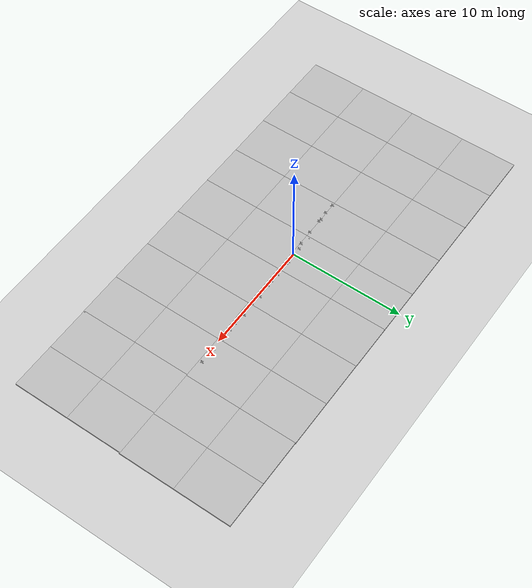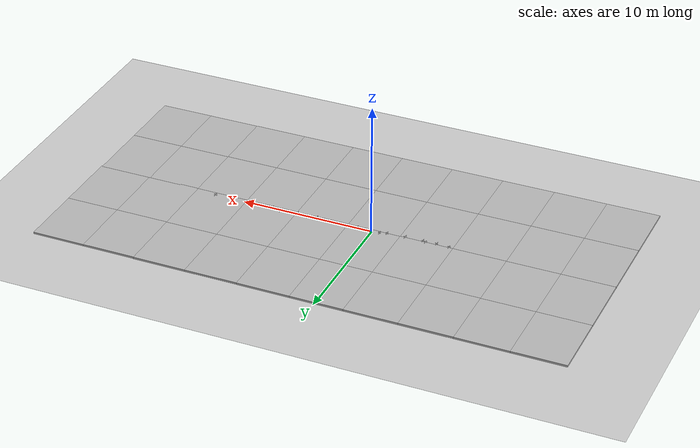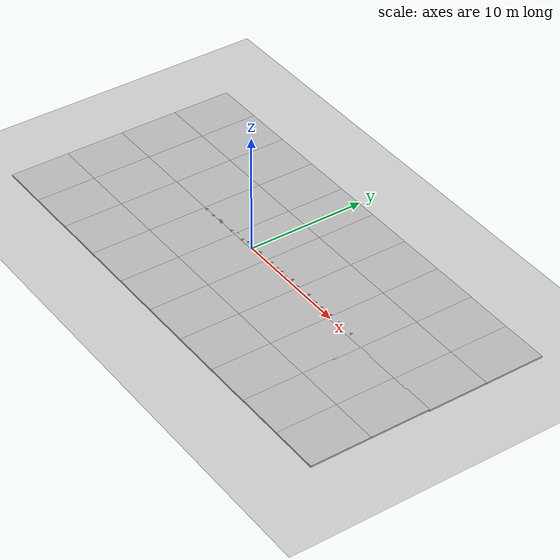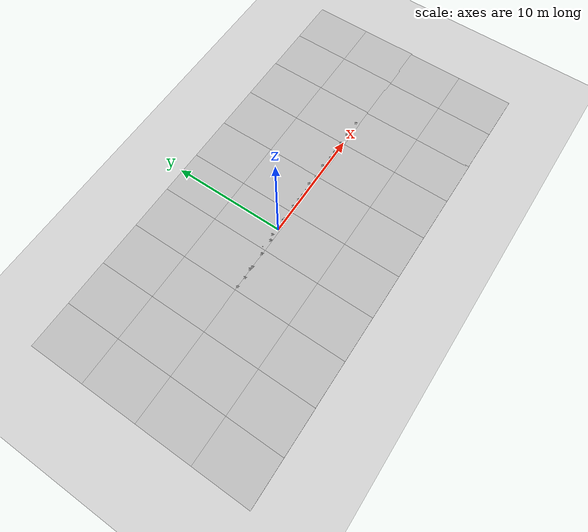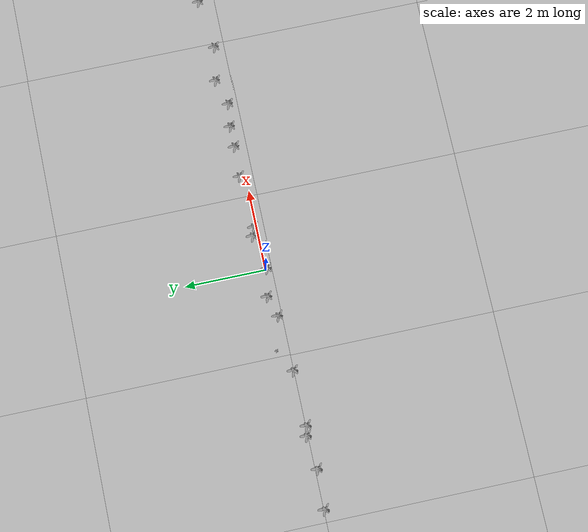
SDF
<sdf version="1.6">
 <world name="default">
  <light name="sun" type="directional">
   <pose>0 0 10 0 -0 0</pose>
   <diffuse>0.8 0.8 0.8 1</diffuse>
   <specular>0.1 0.1 0.1 1</specular>
   <attenuation>
    <range>1000</range>
    <constant>0.9</constant>
    <linear>0.01</linear>
    <quadratic>0.001</quadratic>
   </attenuation>
   <direction>-0.5 0.5 -1</direction>
  </light>
  <model name="ground_plane">
   <static>1</static>
   <link name="link">
    <collision name="collision">
     <geometry><plane><normal>0 0 1</normal><size>100 100</size></plane></geometry>
     <surface><friction><ode><mu>100</mu><mu2>50</mu2></ode></friction></surface>
    </collision>
    <visual name="visual">
     <cast_shadows>0</cast_shadows>
     <geometry><plane><normal>0 0 1</normal><size>100 100</size></plane></geometry>
     <material>
      <script><uri>file://media/materials/scripts/gazebo.material</uri><name>Gazebo/Grey</name></script>
     </material>
    </visual>
   </link>
  </model>
  <gravity>0 0 -9.8</gravity>
  <magnetic_field>6e-06 2.3e-05 -4.2e-05</magnetic_field>
  <atmosphere type="adiabatic"/>
  <physics name="default_physics" default="0" type="ode">
   <max_step_size>0.001</max_step_size>
   <real_time_factor>1</real_time_factor>
   <real_time_update_rate>1000</real_time_update_rate>
  </physics>
  <scene><ambient>0.4 0.4 0.4 1</ambient><background>0.7 0.7 0.7 1</background><shadows>1</shadows></scene>
  <spherical_coordinates>
   <surface_model>EARTH_WGS84</surface_model>
   <latitude_deg>0</latitude_deg>
   <longitude_deg>0</longitude_deg>
   <elevation>0</elevation>
   <heading_deg>0</heading_deg>
  </spherical_coordinates>
  <model name="mud_box">
   <static>1</static>
   <link name="link">
    <collision name="collision"><geometry><box><size>8 10 0.2</size></box></geometry></collision>
    <visual name="visual_1">
     <pose>-2 2.5 0 0 -0 0</pose>
     <cast_shadows>0</cast_shadows>
     <geometry><box><size>4 5 0.2</size></box></geometry>
     <material>
      <script>
       <uri>model://mud_box/materials/scripts</uri>
       <uri>model://mud_box/materials/textures</uri>
       <name>vrc/mud</name>
      </script>
     </material>
    </visual>
    <visual name="visual_2">
     <pose>2 2.5 0 0 -0 0</pose>
     <cast_shadows>0</cast_shadows>
     <geometry><box><size>4 5 0.2</size></box></geometry>
     <material>
      <script>
       <uri>model://mud_box/materials/scripts</uri>
       <uri>model://mud_box/materials/textures</uri>
       <name>vrc/mud</name>
      </script>
     </material>
    </visual>
    <visual name="visual_3">
     <pose>2 -2.5 0 0 -0 0</pose>
     <cast_shadows>0</cast_shadows>
     <geometry><box><size>4 5 0.2</size></box></geometry>
     <material>
      <script>
       <uri>model://mud_box/materials/scripts</uri>
       <uri>model://mud_box/materials/textures</uri>
       <name>vrc/mud</name>
      </script>
     </material>
    </visual>
    <visual name="visual_4">
     <pose>-2 -2.5 0 0 -0 0</pose>
     <cast_shadows>0</cast_shadows>
     <geometry><box><size>4 5 0.2</size></box></geometry>
     <material>
      <script>
       <uri>model://mud_box/materials/scripts</uri>
       <uri>model://mud_box/materials/textures</uri>
       <name>vrc/mud</name>
      </script>
     </material>
    </visual>
   </link>
   <pose>-6.12765 4.83622 0 0 -0 0</pose>
  </model>
  <model name="mud_box_0">
   <static>1</static>
   <link name="link">
    <collision name="collision"><geometry><box><size>8 10 0.2</size></box></geometry></collision>
    <visual name="visual_1">
     <pose>-2 2.5 0 0 -0 0</pose>
     <cast_shadows>0</cast_shadows>
     <geometry><box><size>4 5 0.2</size></box></geometry>
     <material>
      <script>
       <uri>model://mud_box/materials/scripts</uri>
       <uri>model://mud_box/materials/textures</uri>
       <name>vrc/mud</name>
      </script>
     </material>
    </visual>
    <visual name="visual_2">
     <pose>2 2.5 0 0 -0 0</pose>
     <cast_shadows>0</cast_shadows>
     <geometry><box><size>4 5 0.2</size></box></geometry>
     <material>
      <script>
       <uri>model://mud_box/materials/scripts</uri>
       <uri>model://mud_box/materials/textures</uri>
       <name>vrc/mud</name>
      </script>
     </material>
    </visual>
    <visual name="visual_3">
     <pose>2 -2.5 0 0 -0 0</pose>
     <cast_shadows>0</cast_shadows>
     <geometry><box><size>4 5 0.2</size></box></geometry>
     <material>
      <script>
       <uri>model://mud_box/materials/scripts</uri>
       <uri>model://mud_box/materials/textures</uri>
       <name>vrc/mud</name>
      </script>
     </material>
    </visual>
    <visual name="visual_4">
     <pose>-2 -2.5 0 0 -0 0</pose>
     <cast_shadows>0</cast_shadows>
     <geometry><box><size>4 5 0.2</size></box></geometry>
     <material>
      <script>
       <uri>model://mud_box/materials/scripts</uri>
       <uri>model://mud_box/materials/textures</uri>
       <name>vrc/mud</name>
      </script>
     </material>
    </visual>
   </link>
   <pose>1.86767 4.83104 0 0 -0 0</pose>
  </model>
  <model name="mud_box_1">
   <static>1</static>
   <link name="link">
    <collision name="collision"><geometry><box><size>8 10 0.2</size></box></geometry></collision>
    <visual name="visual_1">
     <pose>-2 2.5 0 0 -0 0</pose>
     <cast_shadows>0</cast_shadows>
     <geometry><box><size>4 5 0.2</size></box></geometry>
     <material>
      <script>
       <uri>model://mud_box/materials/scripts</uri>
       <uri>model://mud_box/materials/textures</uri>
       <name>vrc/mud</name>
      </script>
     </material>
    </visual>
    <visual name="visual_2">
     <pose>2 2.5 0 0 -0 0</pose>
     <cast_shadows>0</cast_shadows>
     <geometry><box><size>4 5 0.2</size></box></geometry>
     <material>
      <script>
       <uri>model://mud_box/materials/scripts</uri>
       <uri>model://mud_box/materials/textures</uri>
       <name>vrc/mud</name>
      </script>
     </material>
    </visual>
    <visual name="visual_3">
     <pose>2 -2.5 0 0 -0 0</pose>
     <cast_shadows>0</cast_shadows>
     <geometry><box><size>4 5 0.2</size></box></geometry>
     <material>
      <script>
       <uri>model://mud_box/materials/scripts</uri>
       <uri>model://mud_box/materials/textures</uri>
       <name>vrc/mud</name>
      </script>
     </material>
    </visual>
    <visual name="visual_4">
     <pose>-2 -2.5 0 0 -0 0</pose>
     <cast_shadows>0</cast_shadows>
     <geometry><box><size>4 5 0.2</size></box></geometry>
     <material>
      <script>
       <uri>model://mud_box/materials/scripts</uri>
       <uri>model://mud_box/materials/textures</uri>
       <name>vrc/mud</name>
      </script>
     </material>
    </visual>
   </link>
   <pose>-6.12792 -5.13998 0 0 -0 0</pose>
  </model>
  <model name="mud_box_2">
   <static>1</static>
   <link name="link">
    <collision name="collision"><geometry><box><size>8 10 0.2</size></box></geometry></collision>
    <visual name="visual_1">
     <pose>-2 2.5 0 0 -0 0</pose>
     <cast_shadows>0</cast_shadows>
     <geometry><box><size>4 5 0.2</size></box></geometry>
     <material>
      <script>
       <uri>model://mud_box/materials/scripts</uri>
       <uri>model://mud_box/materials/textures</uri>
       <name>vrc/mud</name>
      </script>
     </material>
    </visual>
    <visual name="visual_2">
     <pose>2 2.5 0 0 -0 0</pose>
     <cast_shadows>0</cast_shadows>
     <geometry><box><size>4 5 0.2</size></box></geometry>
     <material>
      <script>
       <uri>model://mud_box/materials/scripts</uri>
       <uri>model://mud_box/materials/textures</uri>
       <name>vrc/mud</name>
      </script>
     </material>
    </visual>
    <visual name="visual_3">
     <pose>2 -2.5 0 0 -0 0</pose>
     <cast_shadows>0</cast_shadows>
     <geometry><box><size>4 5 0.2</size></box></geometry>
     <material>
      <script>
       <uri>model://mud_box/materials/scripts</uri>
       <uri>model://mud_box/materials/textures</uri>
       <name>vrc/mud</name>
      </script>
     </material>
    </visual>
    <visual name="visual_4">
     <pose>-2 -2.5 0 0 -0 0</pose>
     <cast_shadows>0</cast_shadows>
     <geometry><box><size>4 5 0.2</size></box></geometry>
     <material>
      <script>
       <uri>model://mud_box/materials/scripts</uri>
       <uri>model://mud_box/materials/textures</uri>
       <name>vrc/mud</name>
      </script>
     </material>
    </visual>
   </link>
   <pose>1.85975 -5.14192 0 0 -0 0</pose>
  </model>
  <model name="mud_box_0_clone">
   <static>1</static>
   <link name="link">
    <collision name="collision"><geometry><box><size>8 10 0.2</size></box></geometry></collision>
    <visual name="visual_1">
     <pose>-2 2.5 0 0 -0 0</pose>
     <cast_shadows>0</cast_shadows>
     <geometry><box><size>4 5 0.2</size></box></geometry>
     <material>
      <script>
       <uri>model://mud_box/materials/scripts</uri>
       <uri>model://mud_box/materials/textures</uri>
       <name>vrc/mud</name>
      </script>
     </material>
    </visual>
    <visual name="visual_2">
     <pose>2 2.5 0 0 -0 0</pose>
     <cast_shadows>0</cast_shadows>
     <geometry><box><size>4 5 0.2</size></box></geometry>
     <material>
      <script>
       <uri>model://mud_box/materials/scripts</uri>
       <uri>model://mud_box/materials/textures</uri>
       <name>vrc/mud</name>
      </script>
     </material>
    </visual>
    <visual name="visual_3">
     <pose>2 -2.5 0 0 -0 0</pose>
     <cast_shadows>0</cast_shadows>
     <geometry><box><size>4 5 0.2</size></box></geometry>
     <material>
      <script>
       <uri>model://mud_box/materials/scripts</uri>
       <uri>model://mud_box/materials/textures</uri>
       <name>vrc/mud</name>
      </script>
     </material>
    </visual>
    <visual name="visual_4">
     <pose>-2 -2.5 0 0 -0 0</pose>
     <cast_shadows>0</cast_shadows>
     <geometry><box><size>4 5 0.2</size></box></geometry>
     <material>
      <script>
       <uri>model://mud_box/materials/scripts</uri>
       <uri>model://mud_box/materials/textures</uri>
       <name>vrc/mud</name>
      </script>
     </material>
    </visual>
   </link>
   <pose>9.85757 -5.14216 0 0 -0 0</pose>
  </model>
  <model name="mud_box_0_clone_clone">
   <static>1</static>
   <link name="link">
    <collision name="collision"><geometry><box><size>8 10 0.2</size></box></geometry></collision>
    <visual name="visual_1">
     <pose>-2 2.5 0 0 -0 0</pose>
     <cast_shadows>0</cast_shadows>
     <geometry><box><size>4 5 0.2</size></box></geometry>
     <material>
      <script>
       <uri>model://mud_box/materials/scripts</uri>
       <uri>model://mud_box/materials/textures</uri>
       <name>vrc/mud</name>
      </script>
     </material>
    </visual>
    <visual name="visual_2">
     <pose>2 2.5 0 0 -0 0</pose>
     <cast_shadows>0</cast_shadows>
     <geometry><box><size>4 5 0.2</size></box></geometry>
     <material>
      <script>
       <uri>model://mud_box/materials/scripts</uri>
       <uri>model://mud_box/materials/textures</uri>
       <name>vrc/mud</name>
      </script>
     </material>
    </visual>
    <visual name="visual_3">
     <pose>2 -2.5 0 0 -0 0</pose>
     <cast_shadows>0</cast_shadows>
     <geometry><box><size>4 5 0.2</size></box></geometry>
     <material>
      <script>
       <uri>model://mud_box/materials/scripts</uri>
       <uri>model://mud_box/materials/textures</uri>
       <name>vrc/mud</name>
      </script>
     </material>
    </visual>
    <visual name="visual_4">
     <pose>-2 -2.5 0 0 -0 0</pose>
     <cast_shadows>0</cast_shadows>
     <geometry><box><size>4 5 0.2</size></box></geometry>
     <material>
      <script>
       <uri>model://mud_box/materials/scripts</uri>
       <uri>model://mud_box/materials/textures</uri>
       <name>vrc/mud</name>
      </script>
     </material>
    </visual>
   </link>
   <pose>17.7661 -5.12084 0 0 -0 0</pose>
  </model>
  <model name="mud_box_0_clone_clone_0">
   <static>1</static>
   <link name="link">
    <collision name="collision"><geometry><box><size>8 10 0.2</size></box></geometry></collision>
    <visual name="visual_1">
     <pose>-2 2.5 0 0 -0 0</pose>
     <cast_shadows>0</cast_shadows>
     <geometry><box><size>4 5 0.2</size></box></geometry>
     <material>
      <script>
       <uri>model://mud_box/materials/scripts</uri>
       <uri>model://mud_box/materials/textures</uri>
       <name>vrc/mud</name>
      </script>
     </material>
    </visual>
    <visual name="visual_2">
     <pose>2 2.5 0 0 -0 0</pose>
     <cast_shadows>0</cast_shadows>
     <geometry><box><size>4 5 0.2</size></box></geometry>
     <material>
      <script>
       <uri>model://mud_box/materials/scripts</uri>
       <uri>model://mud_box/materials/textures</uri>
       <name>vrc/mud</name>
      </script>
     </material>
    </visual>
    <visual name="visual_3">
     <pose>2 -2.5 0 0 -0 0</pose>
     <cast_shadows>0</cast_shadows>
     <geometry><box><size>4 5 0.2</size></box></geometry>
     <material>
      <script>
       <uri>model://mud_box/materials/scripts</uri>
       <uri>model://mud_box/materials/textures</uri>
       <name>vrc/mud</name>
      </script>
     </material>
    </visual>
    <visual name="visual_4">
     <pose>-2 -2.5 0 0 -0 0</pose>
     <cast_shadows>0</cast_shadows>
     <geometry><box><size>4 5 0.2</size></box></geometry>
     <material>
      <script>
       <uri>model://mud_box/materials/scripts</uri>
       <uri>model://mud_box/materials/textures</uri>
       <name>vrc/mud</name>
      </script>
     </material>
    </visual>
   </link>
   <pose>17.8432 4.79546 0 0 -0 0</pose>
  </model>
  <model name="mud_box_0_clone_clone_1">
   <static>1</static>
   <link name="link">
    <collision name="collision"><geometry><box><size>8 10 0.2</size></box></geometry></collision>
    <visual name="visual_1">
     <pose>-2 2.5 0 0 -0 0</pose>
     <cast_shadows>0</cast_shadows>
     <geometry><box><size>4 5 0.2</size></box></geometry>
     <material>
      <script>
       <uri>model://mud_box/materials/scripts</uri>
       <uri>model://mud_box/materials/textures</uri>
       <name>vrc/mud</name>
      </script>
     </material>
    </visual>
    <visual name="visual_2">
     <pose>2 2.5 0 0 -0 0</pose>
     <cast_shadows>0</cast_shadows>
     <geometry><box><size>4 5 0.2</size></box></geometry>
     <material>
      <script>
       <uri>model://mud_box/materials/scripts</uri>
       <uri>model://mud_box/materials/textures</uri>
       <name>vrc/mud</name>
      </script>
     </material>
    </visual>
    <visual name="visual_3">
     <pose>2 -2.5 0 0 -0 0</pose>
     <cast_shadows>0</cast_shadows>
     <geometry><box><size>4 5 0.2</size></box></geometry>
     <material>
      <script>
       <uri>model://mud_box/materials/scripts</uri>
       <uri>model://mud_box/materials/textures</uri>
       <name>vrc/mud</name>
      </script>
     </material>
    </visual>
    <visual name="visual_4">
     <pose>-2 -2.5 0 0 -0 0</pose>
     <cast_shadows>0</cast_shadows>
     <geometry><box><size>4 5 0.2</size></box></geometry>
     <material>
      <script>
       <uri>model://mud_box/materials/scripts</uri>
       <uri>model://mud_box/materials/textures</uri>
       <name>vrc/mud</name>
      </script>
     </material>
    </visual>
   </link>
   <pose>-14.1276 -5.15209 0 0 -0 0</pose>
  </model>
  <model name="mud_box_0_clone_clone_2">
   <static>1</static>
   <link name="link">
    <collision name="collision"><geometry><box><size>8 10 0.2</size></box></geometry></collision>
    <visual name="visual_1">
     <pose>-2 2.5 0 0 -0 0</pose>
     <cast_shadows>0</cast_shadows>
     <geometry><box><size>4 5 0.2</size></box></geometry>
     <material>
      <script>
       <uri>model://mud_box/materials/scripts</uri>
       <uri>model://mud_box/materials/textures</uri>
       <name>vrc/mud</name>
      </script>
     </material>
    </visual>
    <visual name="visual_2">
     <pose>2 2.5 0 0 -0 0</pose>
     <cast_shadows>0</cast_shadows>
     <geometry><box><size>4 5 0.2</size></box></geometry>
     <material>
      <script>
       <uri>model://mud_box/materials/scripts</uri>
       <uri>model://mud_box/materials/textures</uri>
       <name>vrc/mud</name>
      </script>
     </material>
    </visual>
    <visual name="visual_3">
     <pose>2 -2.5 0 0 -0 0</pose>
     <cast_shadows>0</cast_shadows>
     <geometry><box><size>4 5 0.2</size></box></geometry>
     <material>
      <script>
       <uri>model://mud_box/materials/scripts</uri>
       <uri>model://mud_box/materials/textures</uri>
       <name>vrc/mud</name>
      </script>
     </material>
    </visual>
    <visual name="visual_4">
     <pose>-2 -2.5 0 0 -0 0</pose>
     <cast_shadows>0</cast_shadows>
     <geometry><box><size>4 5 0.2</size></box></geometry>
     <material>
      <script>
       <uri>model://mud_box/materials/scripts</uri>
       <uri>model://mud_box/materials/textures</uri>
       <name>vrc/mud</name>
      </script>
     </material>
    </visual>
   </link>
   <pose>-14.1258 4.84756 0 0 -0 0</pose>
  </model>
  <model name="big_plant_19">
   <link name="big_plant_22::link_0">
    <pose>0 0 0.111949 0 -0 0</pose>
    <inertial>
     <mass>1e-08</mass>
     <inertia>
      <ixx>0.166667</ixx>
      <ixy>0</ixy>
      <ixz>0</ixz>
      <iyy>0.166667</iyy>
      <iyz>0</iyz>
      <izz>0.166667</izz>
     </inertia>
    </inertial>
    <visual name="visual">
     <geometry>
      <mesh>
       <uri>/media/alireza/CCCE40F4CE40D7FA/Gitlab/mp-agribot/code/catkin_ws/src/agribot_gazebo/STL files models/big_plant.stl</uri>
       <scale>1 1 1</scale>
      </mesh>
     </geometry>
     <material>
      <lighting>1</lighting>
      <script><uri>file://media/materials/scripts/gazebo.material</uri><name>Gazebo/Grey</name></script>
      <ambient>0.3 0.3 0.3 1</ambient>
      <diffuse>0.7 0.7 0.7 1</diffuse>
      <specular>0.01 1 0.01 1</specular>
      <emissive>0 1 0 1</emissive>
      <shader type="vertex"><normal_map>__default__</normal_map></shader>
     </material>
    </visual>
   </link>
   <static>1</static>
   <pose>-5.87269 -0.155578 0 0 -0 0</pose>
  </model>
  <model name="big_plant">
   <link name="big_plant_22::link_0">
    <pose>0 0 0.111949 0 -0 0</pose>
    <inertial>
     <mass>1e-08</mass>
     <inertia>
      <ixx>0.166667</ixx>
      <ixy>0</ixy>
      <ixz>0</ixz>
      <iyy>0.166667</iyy>
      <iyz>0</iyz>
      <izz>0.166667</izz>
     </inertia>
    </inertial>
    <visual name="visual">
     <geometry>
      <mesh>
       <uri>/media/alireza/CCCE40F4CE40D7FA/Gitlab/mp-agribot/code/catkin_ws/src/agribot_gazebo/STL files models/big_plant.stl</uri>
       <scale>1 1 1</scale>
      </mesh>
     </geometry>
     <material>
      <lighting>1</lighting>
      <script><uri>file://media/materials/scripts/gazebo.material</uri><name>Gazebo/Grey</name></script>
      <ambient>0.3 0.3 0.3 1</ambient>
      <diffuse>0.7 0.7 0.7 1</diffuse>
      <specular>0.01 1 0.01 1</specular>
      <emissive>0 1 0 1</emissive>
      <shader type="vertex"><normal_map>__default__</normal_map></shader>
     </material>
    </visual>
   </link>
   <static>1</static>
   <pose>-4.93132 -0.19799 0 0 -0 0</pose>
  </model>
  <model name="big_plant_clone">
   <link name="big_plant_22::link_0">
    <pose>0 0 0.111949 0 -0 0</pose>
    <inertial>
     <mass>1e-08</mass>
     <inertia>
      <ixx>0.166667</ixx>
      <ixy>0</ixy>
      <ixz>0</ixz>
      <iyy>0.166667</iyy>
      <iyz>0</iyz>
      <izz>0.166667</izz>
     </inertia>
    </inertial>
    <visual name="visual">
     <geometry>
      <mesh>
       <uri>/media/alireza/CCCE40F4CE40D7FA/Gitlab/mp-agribot/code/catkin_ws/src/agribot_gazebo/STL files models/big_plant.stl</uri>
       <scale>1 1 1</scale>
      </mesh>
     </geometry>
     <material>
      <lighting>1</lighting>
      <script><uri>file://media/materials/scripts/gazebo.material</uri><name>Gazebo/Grey</name></script>
      <ambient>0.3 0.3 0.3 1</ambient>
      <diffuse>0.7 0.7 0.7 1</diffuse>
      <specular>0.01 1 0.01 1</specular>
      <emissive>0 1 0 1</emissive>
      <shader type="vertex"><normal_map>__default__</normal_map></shader>
     </material>
    </visual>
   </link>
   <static>1</static>
   <pose>-4.12906 -0.109036 0 0 -0 0</pose>
  </model>
  <model name="big_plant_clone_0">
   <link name="big_plant_22::link_0">
    <pose>0 0 0.111949 0 -0 0</pose>
    <inertial>
     <mass>1e-08</mass>
     <inertia>
      <ixx>0.166667</ixx>
      <ixy>0</ixy>
      <ixz>0</ixz>
      <iyy>0.166667</iyy>
      <iyz>0</iyz>
      <izz>0.166667</izz>
     </inertia>
    </inertial>
    <visual name="visual">
     <geometry>
      <mesh>
       <uri>/media/alireza/CCCE40F4CE40D7FA/Gitlab/mp-agribot/code/catkin_ws/src/agribot_gazebo/STL files models/big_plant.stl</uri>
       <scale>1 1 1</scale>
      </mesh>
     </geometry>
     <material>
      <lighting>1</lighting>
      <script><uri>file://media/materials/scripts/gazebo.material</uri><name>Gazebo/Grey</name></script>
      <ambient>0.3 0.3 0.3 1</ambient>
      <diffuse>0.7 0.7 0.7 1</diffuse>
      <specular>0.01 1 0.01 1</specular>
      <emissive>0 1 0 1</emissive>
      <shader type="vertex"><normal_map>__default__</normal_map></shader>
     </material>
    </visual>
   </link>
   <static>1</static>
   <pose>-3.89196 -0.157101 0 0 -0 0</pose>
  </model>
  <model name="big_plant_clone_2">
   <link name="big_plant_22::link_0">
    <pose>0 0 0.111949 0 -0 0</pose>
    <inertial>
     <mass>1e-08</mass>
     <inertia>
      <ixx>0.166667</ixx>
      <ixy>0</ixy>
      <ixz>0</ixz>
      <iyy>0.166667</iyy>
      <iyz>0</iyz>
      <izz>0.166667</izz>
     </inertia>
    </inertial>
    <visual name="visual">
     <geometry>
      <mesh>
       <uri>/media/alireza/CCCE40F4CE40D7FA/Gitlab/mp-agribot/code/catkin_ws/src/agribot_gazebo/STL files models/big_plant.stl</uri>
       <scale>1 1 1</scale>
      </mesh>
     </geometry>
     <material>
      <lighting>1</lighting>
      <script><uri>file://media/materials/scripts/gazebo.material</uri><name>Gazebo/Grey</name></script>
      <ambient>0.3 0.3 0.3 1</ambient>
      <diffuse>0.7 0.7 0.7 1</diffuse>
      <specular>0.01 1 0.01 1</specular>
      <emissive>0 1 0 1</emissive>
      <shader type="vertex"><normal_map>__default__</normal_map></shader>
     </material>
    </visual>
   </link>
   <static>1</static>
   <pose>-2.56084 -0.129029 0 0 -0 0</pose>
  </model>
  <model name="big_plant_clone_4">
   <link name="big_plant_22::link_0">
    <pose>0 0 0.111949 0 -0 0</pose>
    <inertial>
     <mass>1e-08</mass>
     <inertia>
      <ixx>0.166667</ixx>
      <ixy>0</ixy>
      <ixz>0</ixz>
      <iyy>0.166667</iyy>
      <iyz>0</iyz>
      <izz>0.166667</izz>
     </inertia>
    </inertial>
    <visual name="visual">
     <geometry>
      <mesh>
       <uri>/media/alireza/CCCE40F4CE40D7FA/Gitlab/mp-agribot/code/catkin_ws/src/agribot_gazebo/STL files models/big_plant.stl</uri>
       <scale>1 1 1</scale>
      </mesh>
     </geometry>
     <material>
      <lighting>1</lighting>
      <script><uri>file://media/materials/scripts/gazebo.material</uri><name>Gazebo/Grey</name></script>
      <ambient>0.3 0.3 0.3 1</ambient>
      <diffuse>0.7 0.7 0.7 1</diffuse>
      <specular>0.01 1 0.01 1</specular>
      <emissive>0 1 0 1</emissive>
      <shader type="vertex"><normal_map>__default__</normal_map></shader>
     </material>
    </visual>
   </link>
   <static>1</static>
   <pose>-1.20437 -0.049812 0 0 -0 0</pose>
  </model>
  <model name="big_plant_clone_5">
   <link name="big_plant_22::link_0">
    <pose>0 0 0.111949 0 -0 0</pose>
    <inertial>
     <mass>1e-08</mass>
     <inertia>
      <ixx>0.166667</ixx>
      <ixy>0</ixy>
      <ixz>0</ixz>
      <iyy>0.166667</iyy>
      <iyz>0</iyz>
      <izz>0.166667</izz>
     </inertia>
    </inertial>
    <visual name="visual">
     <geometry>
      <mesh>
       <uri>/media/alireza/CCCE40F4CE40D7FA/Gitlab/mp-agribot/code/catkin_ws/src/agribot_gazebo/STL files models/big_plant.stl</uri>
       <scale>1 1 1</scale>
      </mesh>
     </geometry>
     <material>
      <lighting>1</lighting>
      <script><uri>file://media/materials/scripts/gazebo.material</uri><name>Gazebo/Grey</name></script>
      <ambient>0.3 0.3 0.3 1</ambient>
      <diffuse>0.7 0.7 0.7 1</diffuse>
      <specular>0.01 1 0.01 1</specular>
      <emissive>0 1 0 1</emissive>
      <shader type="vertex"><normal_map>__default__</normal_map></shader>
     </material>
    </visual>
   </link>
   <static>1</static>
   <pose>-0.693027 0.108975 0 0 -0 0</pose>
  </model>
  <model name="big_plant_clone_6">
   <link name="big_plant_22::link_0">
    <pose>0 0 0.111949 0 -0 0</pose>
    <inertial>
     <mass>1e-08</mass>
     <inertia>
      <ixx>0.166667</ixx>
      <ixy>0</ixy>
      <ixz>0</ixz>
      <iyy>0.166667</iyy>
      <iyz>0</iyz>
      <izz>0.166667</izz>
     </inertia>
    </inertial>
    <visual name="visual">
     <geometry>
      <mesh>
       <uri>/media/alireza/CCCE40F4CE40D7FA/Gitlab/mp-agribot/code/catkin_ws/src/agribot_gazebo/STL files models/big_plant.stl</uri>
       <scale>1 1 1</scale>
      </mesh>
     </geometry>
     <material>
      <lighting>1</lighting>
      <script><uri>file://media/materials/scripts/gazebo.material</uri><name>Gazebo/Grey</name></script>
      <ambient>0.3 0.3 0.3 1</ambient>
      <diffuse>0.7 0.7 0.7 1</diffuse>
      <specular>0.01 1 0.01 1</specular>
      <emissive>0 1 0 1</emissive>
      <shader type="vertex"><normal_map>__default__</normal_map></shader>
     </material>
    </visual>
   </link>
   <static>1</static>
   <pose>-0.021989 -0.023329 0 0 -0 0</pose>
  </model>
  <model name="big_plant_clone_7">
   <link name="big_plant_22::link_0">
    <pose>0 0 0.111949 0 -0 0</pose>
    <inertial>
     <mass>1e-08</mass>
     <inertia>
      <ixx>0.166667</ixx>
      <ixy>0</ixy>
      <ixz>0</ixz>
      <iyy>0.166667</iyy>
      <iyz>0</iyz>
      <izz>0.166667</izz>
     </inertia>
    </inertial>
    <visual name="visual">
     <geometry>
      <mesh>
       <uri>/media/alireza/CCCE40F4CE40D7FA/Gitlab/mp-agribot/code/catkin_ws/src/agribot_gazebo/STL files models/big_plant.stl</uri>
       <scale>1 1 1</scale>
      </mesh>
     </geometry>
     <material>
      <lighting>1</lighting>
      <script><uri>file://media/materials/scripts/gazebo.material</uri><name>Gazebo/Grey</name></script>
      <ambient>0.3 0.3 0.3 1</ambient>
      <diffuse>0.7 0.7 0.7 1</diffuse>
      <specular>0.01 1 0.01 1</specular>
      <emissive>0 1 0 1</emissive>
      <shader type="vertex"><normal_map>__default__</normal_map></shader>
     </material>
    </visual>
   </link>
   <static>1</static>
   <pose>0.826988 0.152011 0 0 -0 0</pose>
  </model>
  <model name="big_plant_clone_8">
   <link name="big_plant_22::link_0">
    <pose>0 0 0.111949 0 -0 0</pose>
    <inertial>
     <mass>1e-08</mass>
     <inertia>
      <ixx>0.166667</ixx>
      <ixy>0</ixy>
      <ixz>0</ixz>
      <iyy>0.166667</iyy>
      <iyz>0</iyz>
      <izz>0.166667</izz>
     </inertia>
    </inertial>
    <visual name="visual">
     <geometry>
      <mesh>
       <uri>/media/alireza/CCCE40F4CE40D7FA/Gitlab/mp-agribot/code/catkin_ws/src/agribot_gazebo/STL files models/big_plant.stl</uri>
       <scale>1 1 1</scale>
      </mesh>
     </geometry>
     <material>
      <lighting>1</lighting>
      <script><uri>file://media/materials/scripts/gazebo.material</uri><name>Gazebo/Grey</name></script>
      <ambient>0.3 0.3 0.3 1</ambient>
      <diffuse>0.7 0.7 0.7 1</diffuse>
      <specular>0.01 1 0.01 1</specular>
      <emissive>0 1 0 1</emissive>
      <shader type="vertex"><normal_map>__default__</normal_map></shader>
     </material>
    </visual>
   </link>
   <static>1</static>
   <pose>1.0375 0.078023 0 0 -0 0</pose>
  </model>
  <model name="big_plant_clone_9">
   <link name="big_plant_22::link_0">
    <pose>0 0 0.111949 0 -0 0</pose>
    <inertial>
     <mass>1e-08</mass>
     <inertia>
      <ixx>0.166667</ixx>
      <ixy>0</ixy>
      <ixz>0</ixz>
      <iyy>0.166667</iyy>
      <iyz>0</iyz>
      <izz>0.166667</izz>
     </inertia>
    </inertial>
    <visual name="visual">
     <geometry>
      <mesh>
       <uri>/media/alireza/CCCE40F4CE40D7FA/Gitlab/mp-agribot/code/catkin_ws/src/agribot_gazebo/STL files models/big_plant.stl</uri>
       <scale>1 1 1</scale>
      </mesh>
     </geometry>
     <material>
      <lighting>1</lighting>
      <script><uri>file://media/materials/scripts/gazebo.material</uri><name>Gazebo/Grey</name></script>
      <ambient>0.3 0.3 0.3 1</ambient>
      <diffuse>0.7 0.7 0.7 1</diffuse>
      <specular>0.01 1 0.01 1</specular>
      <emissive>0 1 0 1</emissive>
      <shader type="vertex"><normal_map>__default__</normal_map></shader>
     </material>
    </visual>
   </link>
   <static>1</static>
   <pose>2.34707 0.156808 0 0 -0 0</pose>
  </model>
  <model name="big_plant_clone_10">
   <link name="big_plant_22::link_0">
    <pose>0 0 0.111949 0 -0 0</pose>
    <inertial>
     <mass>1e-08</mass>
     <inertia>
      <ixx>0.166667</ixx>
      <ixy>0</ixy>
      <ixz>0</ixz>
      <iyy>0.166667</iyy>
      <iyz>0</iyz>
      <izz>0.166667</izz>
     </inertia>
    </inertial>
    <visual name="visual">
     <geometry>
      <mesh>
       <uri>/media/alireza/CCCE40F4CE40D7FA/Gitlab/mp-agribot/code/catkin_ws/src/agribot_gazebo/STL files models/big_plant.stl</uri>
       <scale>1 1 1</scale>
      </mesh>
     </geometry>
     <material>
      <lighting>1</lighting>
      <script><uri>file://media/materials/scripts/gazebo.material</uri><name>Gazebo/Grey</name></script>
      <ambient>0.3 0.3 0.3 1</ambient>
      <diffuse>0.7 0.7 0.7 1</diffuse>
      <specular>0.01 1 0.01 1</specular>
      <emissive>0 1 0 1</emissive>
      <shader type="vertex"><normal_map>__default__</normal_map></shader>
     </material>
    </visual>
   </link>
   <static>1</static>
   <pose>3.10853 0.123827 0 0 -0 0</pose>
  </model>
  <model name="big_plant_clone_11">
   <link name="big_plant_22::link_0">
    <pose>0 0 0.111949 0 -0 0</pose>
    <inertial>
     <mass>1e-08</mass>
     <inertia>
      <ixx>0.166667</ixx>
      <ixy>0</ixy>
      <ixz>0</ixz>
      <iyy>0.166667</iyy>
      <iyz>0</iyz>
      <izz>0.166667</izz>
     </inertia>
    </inertial>
    <visual name="visual">
     <geometry>
      <mesh>
       <uri>/media/alireza/CCCE40F4CE40D7FA/Gitlab/mp-agribot/code/catkin_ws/src/agribot_gazebo/STL files models/big_plant.stl</uri>
       <scale>1 1 1</scale>
      </mesh>
     </geometry>
     <material>
      <lighting>1</lighting>
      <script><uri>file://media/materials/scripts/gazebo.material</uri><name>Gazebo/Grey</name></script>
      <ambient>0.3 0.3 0.3 1</ambient>
      <diffuse>0.7 0.7 0.7 1</diffuse>
      <specular>0.01 1 0.01 1</specular>
      <emissive>0 1 0 1</emissive>
      <shader type="vertex"><normal_map>__default__</normal_map></shader>
     </material>
    </visual>
   </link>
   <static>1</static>
   <pose>3.63047 0.120824 0 0 -0 0</pose>
  </model>
  <model name="big_plant_clone_12">
   <link name="big_plant_22::link_0">
    <pose>0 0 0.111949 0 -0 0</pose>
    <inertial>
     <mass>1e-08</mass>
     <inertia>
      <ixx>0.166667</ixx>
      <ixy>0</ixy>
      <ixz>0</ixz>
      <iyy>0.166667</iyy>
      <iyz>0</iyz>
      <izz>0.166667</izz>
     </inertia>
    </inertial>
    <visual name="visual">
     <geometry>
      <mesh>
       <uri>/media/alireza/CCCE40F4CE40D7FA/Gitlab/mp-agribot/code/catkin_ws/src/agribot_gazebo/STL files models/big_plant.stl</uri>
       <scale>1 1 1</scale>
      </mesh>
     </geometry>
     <material>
      <lighting>1</lighting>
      <script><uri>file://media/materials/scripts/gazebo.material</uri><name>Gazebo/Grey</name></script>
      <ambient>0.3 0.3 0.3 1</ambient>
      <diffuse>0.7 0.7 0.7 1</diffuse>
      <specular>0.01 1 0.01 1</specular>
      <emissive>0 1 0 1</emissive>
      <shader type="vertex"><normal_map>__default__</normal_map></shader>
     </material>
    </visual>
   </link>
   <static>1</static>
   <pose>4.20638 0.049733 0 0 -0 0</pose>
  </model>
  <model name="big_plant_clone_13">
   <link name="big_plant_22::link_0">
    <pose>0 0 0.111949 0 -0 0</pose>
    <inertial>
     <mass>1e-08</mass>
     <inertia>
      <ixx>0.166667</ixx>
      <ixy>0</ixy>
      <ixz>0</ixz>
      <iyy>0.166667</iyy>
      <iyz>0</iyz>
      <izz>0.166667</izz>
     </inertia>
    </inertial>
    <visual name="visual">
     <geometry>
      <mesh>
       <uri>/media/alireza/CCCE40F4CE40D7FA/Gitlab/mp-agribot/code/catkin_ws/src/agribot_gazebo/STL files models/big_plant.stl</uri>
       <scale>1 1 1</scale>
      </mesh>
     </geometry>
     <material>
      <lighting>1</lighting>
      <script><uri>file://media/materials/scripts/gazebo.material</uri><name>Gazebo/Grey</name></script>
      <ambient>0.3 0.3 0.3 1</ambient>
      <diffuse>0.7 0.7 0.7 1</diffuse>
      <specular>0.01 1 0.01 1</specular>
      <emissive>0 1 0 1</emissive>
      <shader type="vertex"><normal_map>__default__</normal_map></shader>
     </material>
    </visual>
   </link>
   <static>1</static>
   <pose>4.86191 0.241713 0 0 -0 0</pose>
  </model>
  <model name="big_plant_clone_14">
   <link name="big_plant_22::link_0">
    <pose>0 0 0.111949 0 -0 0</pose>
    <inertial>
     <mass>1e-08</mass>
     <inertia>
      <ixx>0.166667</ixx>
      <ixy>0</ixy>
      <ixz>0</ixz>
      <iyy>0.166667</iyy>
      <iyz>0</iyz>
      <izz>0.166667</izz>
     </inertia>
    </inertial>
    <visual name="visual">
     <geometry>
      <mesh>
       <uri>/media/alireza/CCCE40F4CE40D7FA/Gitlab/mp-agribot/code/catkin_ws/src/agribot_gazebo/STL files models/big_plant.stl</uri>
       <scale>1 1 1</scale>
      </mesh>
     </geometry>
     <material>
      <lighting>1</lighting>
      <script><uri>file://media/materials/scripts/gazebo.material</uri><name>Gazebo/Grey</name></script>
      <ambient>0.3 0.3 0.3 1</ambient>
      <diffuse>0.7 0.7 0.7 1</diffuse>
      <specular>0.01 1 0.01 1</specular>
      <emissive>0 1 0 1</emissive>
      <shader type="vertex"><normal_map>__default__</normal_map></shader>
     </material>
    </visual>
   </link>
   <static>1</static>
   <pose>5.71837 0.091423 0 0 -0 0</pose>
  </model>
  <model name="big_plant_clone_15">
   <link name="big_plant_22::link_0">
    <pose>0 0 0.111949 0 -0 0</pose>
    <inertial>
     <mass>1e-08</mass>
     <inertia>
      <ixx>0.166667</ixx>
      <ixy>0</ixy>
      <ixz>0</ixz>
      <iyy>0.166667</iyy>
      <iyz>0</iyz>
      <izz>0.166667</izz>
     </inertia>
    </inertial>
    <visual name="visual">
     <geometry>
      <mesh>
       <uri>/media/alireza/CCCE40F4CE40D7FA/Gitlab/mp-agribot/code/catkin_ws/src/agribot_gazebo/STL files models/big_plant.stl</uri>
       <scale>1 1 1</scale>
      </mesh>
     </geometry>
     <material>
      <lighting>1</lighting>
      <script><uri>file://media/materials/scripts/gazebo.material</uri><name>Gazebo/Grey</name></script>
      <ambient>0.3 0.3 0.3 1</ambient>
      <diffuse>0.7 0.7 0.7 1</diffuse>
      <specular>0.01 1 0.01 1</specular>
      <emissive>0 1 0 1</emissive>
      <shader type="vertex"><normal_map>__default__</normal_map></shader>
     </material>
    </visual>
   </link>
   <static>1</static>
   <pose>6.96631 0.247548 0 0 -0 0</pose>
  </model>
  <model name="big_plant_clone_16">
   <link name="big_plant_22::link_0">
    <pose>0 0 0.111949 0 -0 0</pose>
    <inertial>
     <mass>1e-08</mass>
     <inertia>
      <ixx>0.166667</ixx>
      <ixy>0</ixy>
      <ixz>0</ixz>
      <iyy>0.166667</iyy>
      <iyz>0</iyz>
      <izz>0.166667</izz>
     </inertia>
    </inertial>
    <visual name="visual">
     <geometry>
      <mesh>
       <uri>/media/alireza/CCCE40F4CE40D7FA/Gitlab/mp-agribot/code/catkin_ws/src/agribot_gazebo/STL files models/big_plant.stl</uri>
       <scale>1 1 1</scale>
      </mesh>
     </geometry>
     <material>
      <lighting>1</lighting>
      <script><uri>file://media/materials/scripts/gazebo.material</uri><name>Gazebo/Grey</name></script>
      <ambient>0.3 0.3 0.3 1</ambient>
      <diffuse>0.7 0.7 0.7 1</diffuse>
      <specular>0.01 1 0.01 1</specular>
      <emissive>0 1 0 1</emissive>
      <shader type="vertex"><normal_map>__default__</normal_map></shader>
     </material>
    </visual>
   </link>
   <static>1</static>
   <pose>7.97895 0.101523 0 0 -0 0</pose>
  </model>
  <model name="big_plant_clone_17">
   <link name="big_plant_22::link_0">
    <pose>0 0 0.111949 0 -0 0</pose>
    <inertial>
     <mass>1e-08</mass>
     <inertia>
      <ixx>0.166667</ixx>
      <ixy>0</ixy>
      <ixz>0</ixz>
      <iyy>0.166667</iyy>
      <iyz>0</iyz>
      <izz>0.166667</izz>
     </inertia>
    </inertial>
    <visual name="visual">
     <geometry>
      <mesh>
       <uri>/media/alireza/CCCE40F4CE40D7FA/Gitlab/mp-agribot/code/catkin_ws/src/agribot_gazebo/STL files models/big_plant.stl</uri>
       <scale>1 1 1</scale>
      </mesh>
     </geometry>
     <material>
      <lighting>1</lighting>
      <script><uri>file://media/materials/scripts/gazebo.material</uri><name>Gazebo/Grey</name></script>
      <ambient>0.3 0.3 0.3 1</ambient>
      <diffuse>0.7 0.7 0.7 1</diffuse>
      <specular>0.01 1 0.01 1</specular>
      <emissive>0 1 0 1</emissive>
      <shader type="vertex"><normal_map>__default__</normal_map></shader>
     </material>
    </visual>
   </link>
   <static>1</static>
   <pose>7.72023 0.024822 0 0 -0 0</pose>
  </model>
  <model name="big_plant_clone_18">
   <link name="big_plant_22::link_0">
    <pose>0 0 0.111949 0 -0 0</pose>
    <inertial>
     <mass>1e-08</mass>
     <inertia>
      <ixx>0.166667</ixx>
      <ixy>0</ixy>
      <ixz>0</ixz>
      <iyy>0.166667</iyy>
      <iyz>0</iyz>
      <izz>0.166667</izz>
     </inertia>
    </inertial>
    <visual name="visual">
     <geometry>
      <mesh>
       <uri>/media/alireza/CCCE40F4CE40D7FA/Gitlab/mp-agribot/code/catkin_ws/src/agribot_gazebo/STL files models/big_plant.stl</uri>
       <scale>1 1 1</scale>
      </mesh>
     </geometry>
     <material>
      <lighting>1</lighting>
      <script><uri>file://media/materials/scripts/gazebo.material</uri><name>Gazebo/Grey</name></script>
      <ambient>0.3 0.3 0.3 1</ambient>
      <diffuse>0.7 0.7 0.7 1</diffuse>
      <specular>0.01 1 0.01 1</specular>
      <emissive>0 1 0 1</emissive>
      <shader type="vertex"><normal_map>__default__</normal_map></shader>
     </material>
    </visual>
   </link>
   <static>1</static>
   <pose>8.67369 0.138078 0 0 -0 0</pose>
  </model>
  <model name="big_plant_clone_19">
   <link name="big_plant_22::link_0">
    <pose>0 0 0.111949 0 -0 0</pose>
    <inertial>
     <mass>1e-08</mass>
     <inertia>
      <ixx>0.166667</ixx>
      <ixy>0</ixy>
      <ixz>0</ixz>
      <iyy>0.166667</iyy>
      <iyz>0</iyz>
      <izz>0.166667</izz>
     </inertia>
    </inertial>
    <visual name="visual">
     <geometry>
      <mesh>
       <uri>/media/alireza/CCCE40F4CE40D7FA/Gitlab/mp-agribot/code/catkin_ws/src/agribot_gazebo/STL files models/big_plant.stl</uri>
       <scale>1 1 1</scale>
      </mesh>
     </geometry>
     <material>
      <lighting>1</lighting>
      <script><uri>file://media/materials/scripts/gazebo.material</uri><name>Gazebo/Grey</name></script>
      <ambient>0.3 0.3 0.3 1</ambient>
      <diffuse>0.7 0.7 0.7 1</diffuse>
      <specular>0.01 1 0.01 1</specular>
      <emissive>0 1 0 1</emissive>
      <shader type="vertex"><normal_map>__default__</normal_map></shader>
     </material>
    </visual>
   </link>
   <static>1</static>
   <pose>9.71692 0.149412 0 0 -0 0</pose>
  </model>
  <model name="big_plant_clone_20">
   <link name="big_plant_22::link_0">
    <pose>0 0 0.111949 0 -0 0</pose>
    <inertial>
     <mass>1e-08</mass>
     <inertia>
      <ixx>0.166667</ixx>
      <ixy>0</ixy>
      <ixz>0</ixz>
      <iyy>0.166667</iyy>
      <iyz>0</iyz>
      <izz>0.166667</izz>
     </inertia>
    </inertial>
    <visual name="visual">
     <geometry>
      <mesh>
       <uri>/media/alireza/CCCE40F4CE40D7FA/Gitlab/mp-agribot/code/catkin_ws/src/agribot_gazebo/STL files models/big_plant.stl</uri>
       <scale>1 1 1</scale>
      </mesh>
     </geometry>
     <material>
      <lighting>1</lighting>
      <script><uri>file://media/materials/scripts/gazebo.material</uri><name>Gazebo/Grey</name></script>
      <ambient>0.3 0.3 0.3 1</ambient>
      <diffuse>0.7 0.7 0.7 1</diffuse>
      <specular>0.01 1 0.01 1</specular>
      <emissive>0 1 0 1</emissive>
      <shader type="vertex"><normal_map>__default__</normal_map></shader>
     </material>
    </visual>
   </link>
   <static>1</static>
   <pose>10.76 0.160802 0 0 -0 0</pose>
  </model>
  <model name="big_plant_clone_21">
   <link name="big_plant_22::link_0">
    <pose>0 0 0.111949 0 -0 0</pose>
    <inertial>
     <mass>1e-08</mass>
     <inertia>
      <ixx>0.166667</ixx>
      <ixy>0</ixy>
      <ixz>0</ixz>
      <iyy>0.166667</iyy>
      <iyz>0</iyz>
      <izz>0.166667</izz>
     </inertia>
    </inertial>
    <visual name="visual">
     <geometry>
      <mesh>
       <uri>/media/alireza/CCCE40F4CE40D7FA/Gitlab/mp-agribot/code/catkin_ws/src/agribot_gazebo/STL files models/big_plant.stl</uri>
       <scale>1 1 1</scale>
      </mesh>
     </geometry>
     <material>
      <lighting>1</lighting>
      <script><uri>file://media/materials/scripts/gazebo.material</uri><name>Gazebo/Grey</name></script>
      <ambient>0.3 0.3 0.3 1</ambient>
      <diffuse>0.7 0.7 0.7 1</diffuse>
      <specular>0.01 1 0.01 1</specular>
      <emissive>0 1 0 1</emissive>
      <shader type="vertex"><normal_map>__default__</normal_map></shader>
     </material>
    </visual>
   </link>
   <static>1</static>
   <pose>12.2344 0.141852 0 0 -0 0</pose>
  </model>
  <model name="mud_box_3">
   <static>1</static>
   <link name="link">
    <collision name="collision"><geometry><box><size>8 10 0.2</size></box></geometry></collision>
    <visual name="visual_1">
     <pose>-2 2.5 0 0 -0 0</pose>
     <cast_shadows>0</cast_shadows>
     <geometry><box><size>4 5 0.2</size></box></geometry>
     <material>
      <script>
       <uri>model://mud_box/materials/scripts</uri>
       <uri>model://mud_box/materials/textures</uri>
       <name>vrc/mud</name>
      </script>
     </material>
    </visual>
    <visual name="visual_2">
     <pose>2 2.5 0 0 -0 0</pose>
     <cast_shadows>0</cast_shadows>
     <geometry><box><size>4 5 0.2</size></box></geometry>
     <material>
      <script>
       <uri>model://mud_box/materials/scripts</uri>
       <uri>model://mud_box/materials/textures</uri>
       <name>vrc/mud</name>
      </script>
     </material>
    </visual>
    <visual name="visual_3">
     <pose>2 -2.5 0 0 -0 0</pose>
     <cast_shadows>0</cast_shadows>
     <geometry><box><size>4 5 0.2</size></box></geometry>
     <material>
      <script>
       <uri>model://mud_box/materials/scripts</uri>
       <uri>model://mud_box/materials/textures</uri>
       <name>vrc/mud</name>
      </script>
     </material>
    </visual>
    <visual name="visual_4">
     <pose>-2 -2.5 0 0 -0 0</pose>
     <cast_shadows>0</cast_shadows>
     <geometry><box><size>4 5 0.2</size></box></geometry>
     <material>
      <script>
       <uri>model://mud_box/materials/scripts</uri>
       <uri>model://mud_box/materials/textures</uri>
       <name>vrc/mud</name>
      </script>
     </material>
    </visual>
   </link>
   <pose>9.84986 4.82173 0 0 -0 0</pose>
  </model>
  <model name="small_plant">
   <link name="link_0">
    <pose>0 0 0.110674 0 -0 0</pose>
    <inertial>
     <mass>1e-08</mass>
     <inertia>
      <ixx>0.166667</ixx>
      <ixy>0</ixy>
      <ixz>0</ixz>
      <iyy>0.166667</iyy>
      <iyz>0</iyz>
      <izz>0.166667</izz>
     </inertia>
    </inertial>
    <visual name="visual">
     <geometry>
      <mesh>
       <uri>/media/alireza/CCCE40F4CE40D7FA/Gitlab/mp-agribot/code/catkin_ws/src/agribot_gazebo/STL files models/small_plant.stl</uri>
       <scale>1 1 1</scale>
      </mesh>
     </geometry>
     <material>
      <lighting>1</lighting>
      <script><uri>file://media/materials/scripts/gazebo.material</uri><name>Gazebo/Grey</name></script>
      <ambient>0.3 0.3 0.3 1</ambient>
      <diffuse>0.7 0.7 0.7 1</diffuse>
      <specular>0.01 1 0.01 1</specular>
      <emissive>0 1 0 1</emissive>
      <shader type="vertex"><normal_map>__default__</normal_map></shader>
     </material>
    </visual>
   </link>
   <static>1</static>
   <pose>-1.97143 0.153461 0 0 -0 0</pose>
  </model>
 </world>
</sdf>
